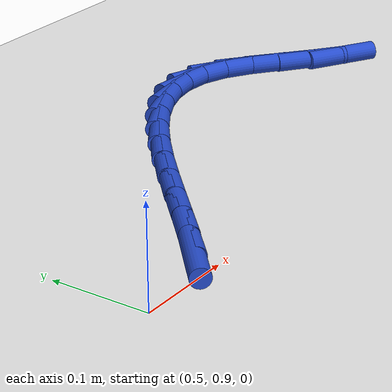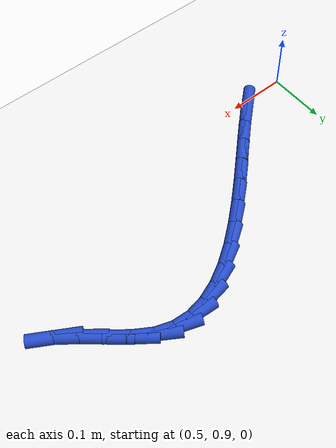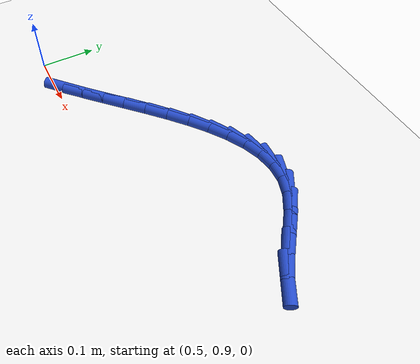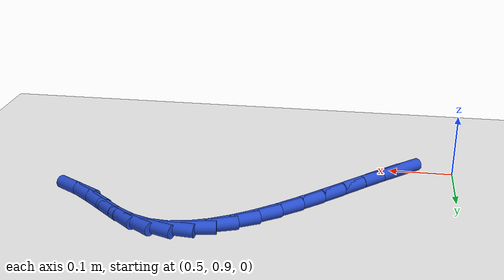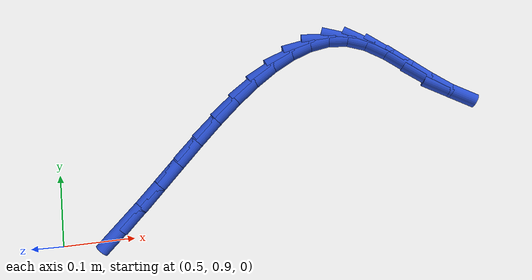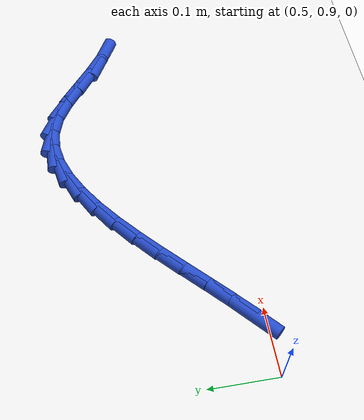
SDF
<sdf version="1.6">
 <world name="default">
  <model name="ground_plane">
   <static>1</static>
   <link name="link">
    <collision name="collision">
     <geometry><plane><normal>0 0 1</normal><size>100 100</size></plane></geometry>
     <surface><friction><ode><mu>100</mu><mu2>50</mu2></ode></friction></surface>
    </collision>
    <visual name="visual">
     <cast_shadows>0</cast_shadows>
     <geometry><plane><normal>0 0 1</normal><size>100 100</size></plane></geometry>
     <material>
      <script><uri>file://media/materials/scripts/gazebo.material</uri><name>Gazebo/WhiteGlow</name></script>
     </material>
    </visual>
   </link>
  </model>
  <model name="line">
   <link name="link_33">
    <pose>0.585559487706052 0.915123070641262 0.01 0 1.57 0.7370793029173643</pose>
    <collision name="collision">
     <geometry><cylinder><radius>0.01</radius><length>0.08</length></cylinder></geometry>
    </collision>
    <visual name="visual">
     <material>
      <script><name>Gazebo/Blue</name><uri>file://media/materials/scripts/gazebo.material</uri></script>
     </material>
     <geometry><cylinder><radius>0.01</radius><length>0.08</length></cylinder></geometry>
    </visual>
   </link>
   <link name="link_34">
    <pose>0.6139341287341711 0.9408800938903489 0.01 0 1.57 0.7620539981247093</pose>
    <collision name="collision">
     <geometry><cylinder><radius>0.01</radius><length>0.08</length></cylinder></geometry>
    </collision>
    <visual name="visual">
     <material>
      <script><name>Gazebo/Blue</name><uri>file://media/materials/scripts/gazebo.material</uri></script>
     </material>
     <geometry><cylinder><radius>0.01</radius><length>0.08</length></cylinder></geometry>
    </visual>
   </link>
   <link name="link_35">
    <pose>0.642787019568394 0.9684163871234431 0.01 0 1.57 0.7721066443820065</pose>
    <collision name="collision">
     <geometry><cylinder><radius>0.01</radius><length>0.08</length></cylinder></geometry>
    </collision>
    <visual name="visual">
     <material>
      <script><name>Gazebo/Blue</name><uri>file://media/materials/scripts/gazebo.material</uri></script>
     </material>
     <geometry><cylinder><radius>0.01</radius><length>0.08</length></cylinder></geometry>
    </visual>
   </link>
   <link name="link_36">
    <pose>0.6720218783697505 0.9968842440140743 0.01 0 1.57 0.7683808546019988</pose>
    <collision name="collision">
     <geometry><cylinder><radius>0.01</radius><length>0.08</length></cylinder></geometry>
    </collision>
    <visual name="visual">
     <material>
      <script><name>Gazebo/Blue</name><uri>file://media/materials/scripts/gazebo.material</uri></script>
     </material>
     <geometry><cylinder><radius>0.01</radius><length>0.08</length></cylinder></geometry>
    </visual>
   </link>
   <link name="link_37">
    <pose>0.7015399361342318 1.0254143823354347 0.01 0 1.57 0.750943738321753</pose>
    <collision name="collision">
     <geometry><cylinder><radius>0.01</radius><length>0.08</length></cylinder></geometry>
    </collision>
    <visual name="visual">
     <material>
      <script><name>Gazebo/Blue</name><uri>file://media/materials/scripts/gazebo.material</uri></script>
     </material>
     <geometry><cylinder><radius>0.01</radius><length>0.08</length></cylinder></geometry>
    </visual>
   </link>
   <link name="link_38">
    <pose>0.7312424238578288 1.053137519860716 0.01 0 1.57 0.7184919266017787</pose>
    <collision name="collision">
     <geometry><cylinder><radius>0.01</radius><length>0.08</length></cylinder></geometry>
    </collision>
    <visual name="visual">
     <material>
      <script><name>Gazebo/Blue</name><uri>file://media/materials/scripts/gazebo.material</uri></script>
     </material>
     <geometry><cylinder><radius>0.01</radius><length>0.08</length></cylinder></geometry>
    </visual>
   </link>
   <link name="link_39">
    <pose>0.761030572536532 1.0791843743631104 0.01 0 1.57 0.6681793026490517</pose>
    <collision name="collision">
     <geometry><cylinder><radius>0.01</radius><length>0.08</length></cylinder></geometry>
    </collision>
    <visual name="visual">
     <material>
      <script><name>Gazebo/Blue</name><uri>file://media/materials/scripts/gazebo.material</uri></script>
     </material>
     <geometry><cylinder><radius>0.01</radius><length>0.08</length></cylinder></geometry>
    </visual>
   </link>
   <link name="link_40">
    <pose>0.790805613166333 1.1026856636158104 0.01 0 1.57 0.5952259296368746</pose>
    <collision name="collision">
     <geometry><cylinder><radius>0.01</radius><length>0.08</length></cylinder></geometry>
    </collision>
    <visual name="visual">
     <material>
      <script><name>Gazebo/Blue</name><uri>file://media/materials/scripts/gazebo.material</uri></script>
     </material>
     <geometry><cylinder><radius>0.01</radius><length>0.08</length></cylinder></geometry>
    </visual>
   </link>
   <link name="link_41">
    <pose>0.8204687767432229 1.1227721053920081 0.01 0 1.57 0.4924468060649312</pose>
    <collision name="collision">
     <geometry><cylinder><radius>0.01</radius><length>0.08</length></cylinder></geometry>
    </collision>
    <visual name="visual">
     <material>
      <script><name>Gazebo/Blue</name><uri>file://media/materials/scripts/gazebo.material</uri></script>
     </material>
     <geometry><cylinder><radius>0.01</radius><length>0.08</length></cylinder></geometry>
    </visual>
   </link>
   <link name="link_42">
    <pose>0.8499212942631922 1.1385744174648946 0.01 0 1.57 0.3503281027424072</pose>
    <collision name="collision">
     <geometry><cylinder><radius>0.01</radius><length>0.08</length></cylinder></geometry>
    </collision>
    <visual name="visual">
     <material>
      <script><name>Gazebo/Blue</name><uri>file://media/materials/scripts/gazebo.material</uri></script>
     </material>
     <geometry><cylinder><radius>0.01</radius><length>0.08</length></cylinder></geometry>
    </visual>
   </link>
   <link name="link_43">
    <pose>0.8790643967222324 1.1492233176076632 0.01 0 1.57 0.15962621810410652</pose>
    <collision name="collision">
     <geometry><cylinder><radius>0.01</radius><length>0.08</length></cylinder></geometry>
    </collision>
    <visual name="visual">
     <material>
      <script><name>Gazebo/Blue</name><uri>file://media/materials/scripts/gazebo.material</uri></script>
     </material>
     <geometry><cylinder><radius>0.01</radius><length>0.08</length></cylinder></geometry>
    </visual>
   </link>
   <link name="link_44">
    <pose>0.9077993151163342 1.1538495235935051 0.01 0 1.57 -0.08009515208632245</pose>
    <collision name="collision">
     <geometry><cylinder><radius>0.01</radius><length>0.08</length></cylinder></geometry>
    </collision>
    <visual name="visual">
     <material>
      <script><name>Gazebo/Blue</name><uri>file://media/materials/scripts/gazebo.material</uri></script>
     </material>
     <geometry><cylinder><radius>0.01</radius><length>0.08</length></cylinder></geometry>
    </visual>
   </link>
   <link name="link_45">
    <pose>0.9360272804414886 1.1515837531956135 0.01 0 1.57 -0.34758033462060545</pose>
    <collision name="collision">
     <geometry><cylinder><radius>0.01</radius><length>0.08</length></cylinder></geometry>
    </collision>
    <visual name="visual">
     <material>
      <script><name>Gazebo/Blue</name><uri>file://media/materials/scripts/gazebo.material</uri></script>
     </material>
     <geometry><cylinder><radius>0.01</radius><length>0.08</length></cylinder></geometry>
    </visual>
   </link>
   <link name="link_46">
    <pose>0.9636521820846191 1.1415755597997055 0.01 0 1.57 -0.5663463048453913</pose>
    <collision name="collision">
     <geometry><cylinder><radius>0.01</radius><length>0.08</length></cylinder></geometry>
    </collision>
    <visual name="visual">
     <material>
      <script><name>Gazebo/Blue</name><uri>file://media/materials/scripts/gazebo.material</uri></script>
     </material>
     <geometry><cylinder><radius>0.01</radius><length>0.08</length></cylinder></geometry>
    </visual>
   </link>
   <link name="link_47">
    <pose>0.9907697186125279 1.1243335306894484 0.01 0 1.57 -0.6769637941260811</pose>
    <collision name="collision">
     <geometry><cylinder><radius>0.01</radius><length>0.08</length></cylinder></geometry>
    </collision>
    <visual name="visual">
     <material>
      <script><name>Gazebo/Blue</name><uri>file://media/materials/scripts/gazebo.material</uri></script>
     </material>
     <geometry><cylinder><radius>0.01</radius><length>0.08</length></cylinder></geometry>
    </visual>
   </link>
   <link name="link_48">
    <pose>1.017793126151487 1.1026161157852472 0.01 0 1.57 -0.7035716356010284</pose>
    <collision name="collision">
     <geometry><cylinder><radius>0.01</radius><length>0.08</length></cylinder></geometry>
    </collision>
    <visual name="visual">
     <material>
      <script><name>Gazebo/Blue</name><uri>file://media/materials/scripts/gazebo.material</uri></script>
     </material>
     <geometry><cylinder><radius>0.01</radius><length>0.08</length></cylinder></geometry>
    </visual>
   </link>
   <link name="link_49">
    <pose>1.0451654657118885 1.0793930845519915 0.01 0 1.57 -0.657789227405496</pose>
    <collision name="collision">
     <geometry><cylinder><radius>0.01</radius><length>0.08</length></cylinder></geometry>
    </collision>
    <visual name="visual">
     <material>
      <script><name>Gazebo/Blue</name><uri>file://media/materials/scripts/gazebo.material</uri></script>
     </material>
     <geometry><cylinder><radius>0.01</radius><length>0.08</length></cylinder></geometry>
    </visual>
   </link>
   <link name="link_50">
    <pose>1.0733297983041235 1.057634206454571 0.01 0 1.57 -0.5340474500768945</pose>
    <collision name="collision">
     <geometry><cylinder><radius>0.01</radius><length>0.08</length></cylinder></geometry>
    </collision>
    <visual name="visual">
     <material>
      <script><name>Gazebo/Blue</name><uri>file://media/materials/scripts/gazebo.material</uri></script>
     </material>
     <geometry><cylinder><radius>0.01</radius><length>0.08</length></cylinder></geometry>
    </visual>
   </link>
  </model>
 </world>
</sdf>
